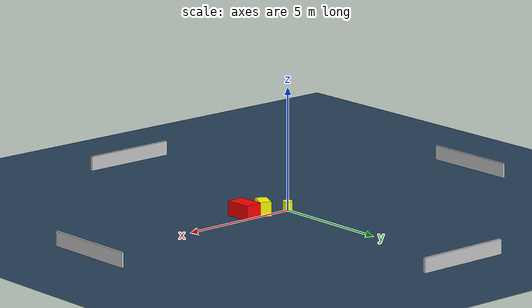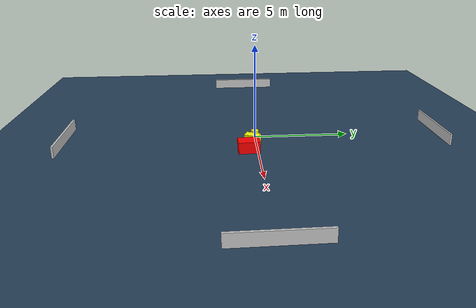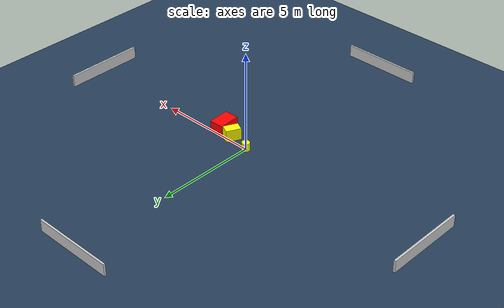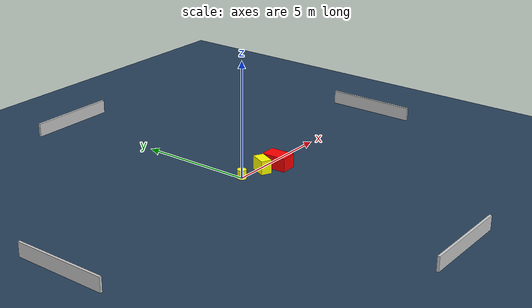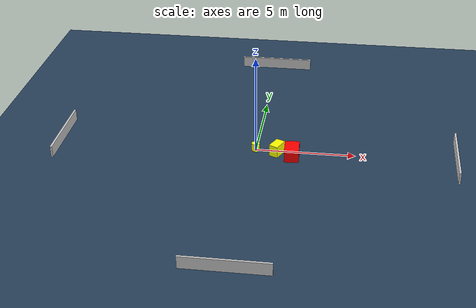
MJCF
<?xml version="1.0" ?>
<mujoco model="generated_environment">
  <option timestep="0.01" integrator="RK4" cone="elliptic"/>
  <default>
    <geom density="1"/>
  </default>
  <asset>
    <texture builtin="gradient" height="3072" name="skybox" rgb1="0.3 0.5 0.7" rgb2="0 0 0" type="skybox" width="512"/>
    <texture builtin="checker" height="300" name="groundplane" rgb1="0.2 0.3 0.4" rgb2="0.1 0.2 0.3" type="2d" width="300"/>
    <material name="groundplane" reflectance="0.2" texrepeat="5 5" texture="groundplane"/>
  </asset>
  <worldbody>
    <light dir="0 0 -1" directional="true" pos="0 0 1.5"/>
    <geom condim="3" friction="0.5 0.005 0.001" material="groundplane" name="floor" pos="0 0 0" size="0 0 0.05" type="plane"/>
    <body name="walls">
      <geom name="wall_1" condim="4" pos="-10.0 0.0 0.3" rgba="0.800000011920929 0.800000011920929 0.800000011920929 1.0" size="0.05 2.0 0.3" type="box"/>
      <geom name="wall_2" condim="4" pos="10.0 0.0 0.3" rgba="0.800000011920929 0.800000011920929 0.800000011920929 1.0" size="0.05 2.0 0.3" type="box"/>
      <geom name="wall_3" condim="4" pos="0.0 -10.0 0.3" rgba="0.800000011920929 0.800000011920929 0.800000011920929 1.0" size="2.0 0.05 0.3" type="box"/>
      <geom name="wall_4" condim="4" pos="0.0 10.0 0.3" rgba="0.800000011920929 0.800000011920929 0.800000011920929 1.0" size="2.0 0.05 0.3" type="box"/>
    </body>
    <body name="robot">
      <joint name="joint_x" type="slide" pos="0 0 0" axis="1 0 0"/>
      <joint name="joint_y" type="slide" pos="0 0 0" axis="0 1 0"/>
      <geom name="robot" type="cylinder" pos="0.0 0.0 0.2" size="0.2 0.2 0.0" mass="5.0" friction="1.0 0.005 0.0001" condim="4" rgba="1.0 1.0 0.0 1.0"/>
    </body>
    <body name="obstacle_1_movable">
      <geom name="obstacle_1_movable" condim="4" pos="1.1011760599759066 -0.2186055352142263 0.3" euler="0 0 64.33506492122285" friction="0.0 0.005 0.001" rgba="1.0 1.0 0.0 1.0" size="0.3765315050040462 0.23639231470296118 0.3" type="box" mass="0.1"/>
      <joint type="free"/>
    </body>
    <body name="obstacle_2_static">
      <geom name="obstacle_2_static" condim="4" pos="1.8657620461438538 -0.46188415268351696 0.3" euler="0 0 92.8823782066845" friction="0.0 0.005 0.001" rgba="1.0 0.0 0.0 1.0" size="0.5444873503806699 0.36195566889420616 0.3" type="box"/>
    </body>
  </worldbody>
  <actuator>
    <motor name="actuator_x" joint="joint_x" gear="1" ctrlrange="-1 1"/>
    <motor name="actuator_y" joint="joint_y" gear="1" ctrlrange="-1 1"/>
  </actuator>
</mujoco>
